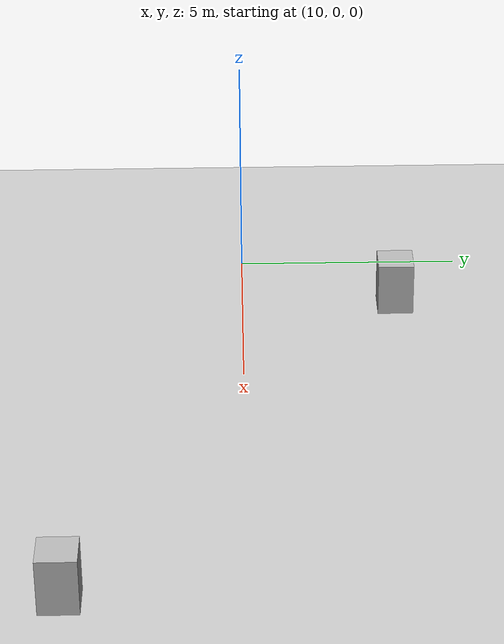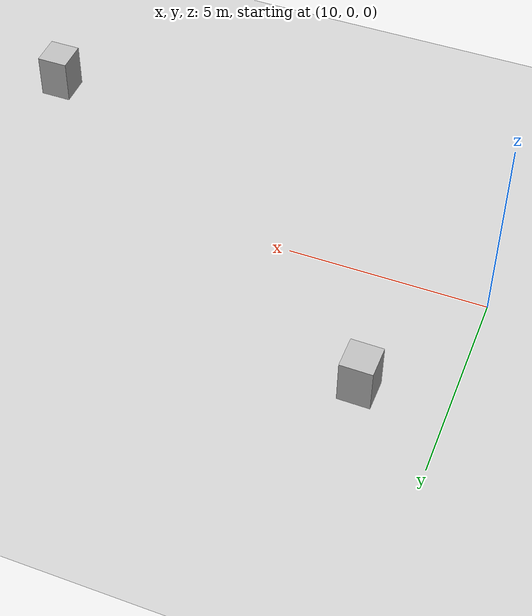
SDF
<?xml version="1.0"?>
<sdf version="1.6">
  <world name="v2-04g-r1-cruise-s4922">
    <gravity>0 0 -9.81</gravity>
    <physics name="v2_deterministic" type="ode">
      <max_step_size>0.002</max_step_size>
      <real_time_update_rate>500</real_time_update_rate>
    </physics>
    <include>
      <uri>model://sun</uri>
    </include>
    <include>
      <uri>model://ground_plane</uri>
    </include>
    <model name="cruise-left">
      <static>true</static>
      <pose>12.038210423 3.477637939 0.600000000 0 0 -0.005140884</pose>
      <link name="link">
        <collision name="collision">
          <geometry>
            <box>
              <size>0.800000 0.800000 1.200000</size>
            </box>
          </geometry>
        </collision>
        <visual name="visual">
          <geometry>
            <box>
              <size>0.800000 0.800000 1.200000</size>
            </box>
          </geometry>
        </visual>
      </link>
    </model>
    <model name="cruise-right">
      <static>true</static>
      <pose>22.972783045 -3.479945802 0.600000000 0 0 0.001045751</pose>
      <link name="link">
        <collision name="collision">
          <geometry>
            <box>
              <size>0.800000 0.800000 1.200000</size>
            </box>
          </geometry>
        </collision>
        <visual name="visual">
          <geometry>
            <box>
              <size>0.800000 0.800000 1.200000</size>
            </box>
          </geometry>
        </visual>
      </link>
    </model>
  </world>
</sdf>
